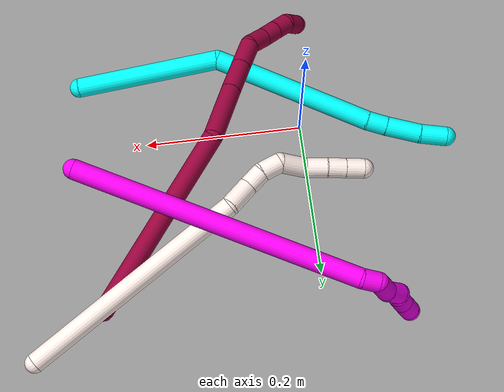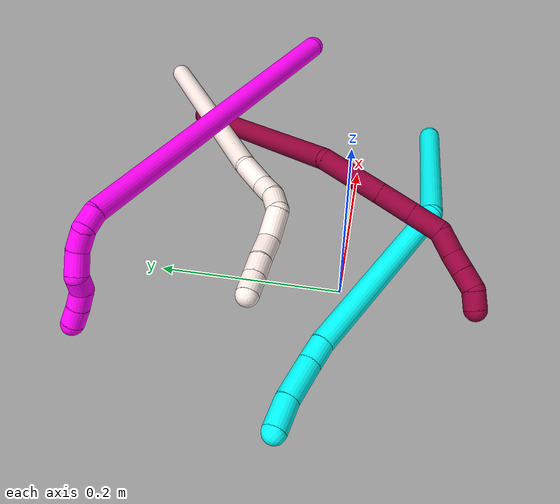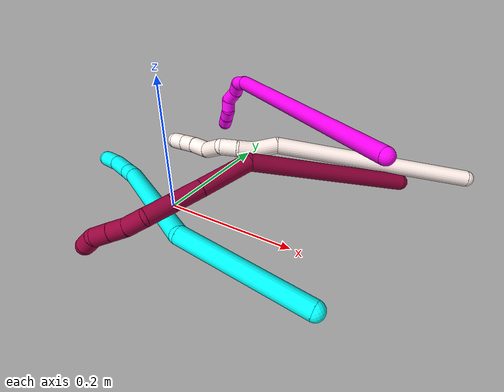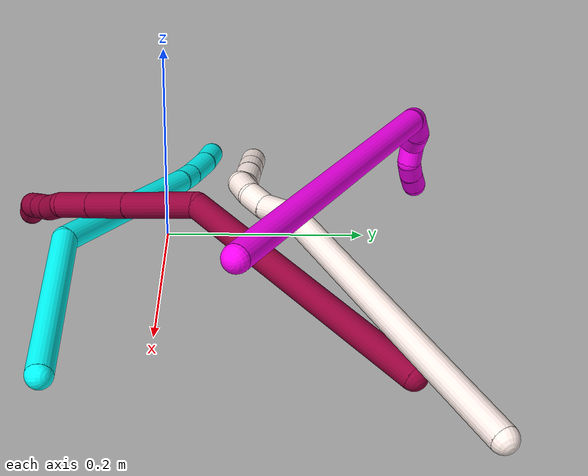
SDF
<sdf version="1.7">
 <world name="default">
  <model name="3">
   <static>0</static>
   <link name="3">
    <collision name="collision-cylinder-e_1_1_4">
     <pose>-0.077036 -0.004174 -0.0517 3.06103 -0.978219 -2.99044</pose>
     <geometry><cylinder><radius>0.0125</radius><length>0.185739</length></cylinder></geometry>
     <surface>
      <friction><ode><mu>1.16</mu><mu2>1.16</mu2><slip1>0</slip1><slip2>0</slip2></ode></friction>
      <contact><ode><kp>1e+06</kp><kd>1</kd><max_vel>0</max_vel><min_depth>0.001</min_depth></ode></contact>
     </surface>
    </collision>
    <visual name="visual-cylinder-e_1_1_4">
     <pose>-0.077036 -0.004174 -0.0517 3.06103 -0.978219 -2.99044</pose>
     <geometry><cylinder><radius>0.0125</radius><length>0.185739</length></cylinder></geometry>
     <material><ambient>0.003922 1 0.996078 1</ambient></material>
    </visual>
    <collision name="collision-cylinder-e_2_4_5">
     <pose>-0.249142 0.031866 -0.122276 -2.00967 -1.13367 1.57273</pose>
     <geometry><cylinder><radius>0.0125</radius><length>0.209874</length></cylinder></geometry>
     <surface>
      <friction><ode><mu>1.16</mu><mu2>1.16</mu2><slip1>0</slip1><slip2>0</slip2></ode></friction>
      <contact><ode><kp>1e+06</kp><kd>1</kd><max_vel>0</max_vel><min_depth>0.001</min_depth></ode></contact>
     </surface>
    </collision>
    <visual name="visual-cylinder-e_2_4_5">
     <pose>-0.249142 0.031866 -0.122276 -2.00967 -1.13367 1.57273</pose>
     <geometry><cylinder><radius>0.0125</radius><length>0.209874</length></cylinder></geometry>
     <material><ambient>0.003922 1 0.996078 1</ambient></material>
    </visual>
    <collision name="collision-cylinder-e_3_5_6">
     <pose>-0.355518 0.076736 -0.14504 -2.26651 -1.07832 1.81443</pose>
     <geometry><cylinder><radius>0.0125</radius><length>0.025661</length></cylinder></geometry>
     <surface>
      <friction><ode><mu>1.16</mu><mu2>1.16</mu2><slip1>0</slip1><slip2>0</slip2></ode></friction>
      <contact><ode><kp>1e+06</kp><kd>1</kd><max_vel>0</max_vel><min_depth>0.001</min_depth></ode></contact>
     </surface>
    </collision>
    <visual name="visual-cylinder-e_3_5_6">
     <pose>-0.355518 0.076736 -0.14504 -2.26651 -1.07832 1.81443</pose>
     <geometry><cylinder><radius>0.0125</radius><length>0.025661</length></cylinder></geometry>
     <material><ambient>0.003922 1 0.996078 1</ambient></material>
    </visual>
    <collision name="collision-cylinder-e_4_6_7">
     <pose>-0.386913 0.088047 -0.156099 -2.39353 -1.11766 2.02054</pose>
     <geometry><cylinder><radius>0.0125</radius><length>0.04469</length></cylinder></geometry>
     <surface>
      <friction><ode><mu>1.16</mu><mu2>1.16</mu2><slip1>0</slip1><slip2>0</slip2></ode></friction>
      <contact><ode><kp>1e+06</kp><kd>1</kd><max_vel>0</max_vel><min_depth>0.001</min_depth></ode></contact>
     </surface>
    </collision>
    <visual name="visual-cylinder-e_4_6_7">
     <pose>-0.386913 0.088047 -0.156099 -2.39353 -1.11766 2.02054</pose>
     <geometry><cylinder><radius>0.0125</radius><length>0.04469</length></cylinder></geometry>
     <material><ambient>0.003922 1 0.996078 1</ambient></material>
    </visual>
    <collision name="collision-cylinder-e_5_7_2">
     <pose>-0.421452 0.099313 -0.170988 -2.60299 -1.01411 2.21932</pose>
     <geometry><cylinder><radius>0.0125</radius><length>0.034035</length></cylinder></geometry>
     <surface>
      <friction><ode><mu>1.16</mu><mu2>1.16</mu2><slip1>0</slip1><slip2>0</slip2></ode></friction>
      <contact><ode><kp>1e+06</kp><kd>1</kd><max_vel>0</max_vel><min_depth>0.001</min_depth></ode></contact>
     </surface>
    </collision>
    <visual name="visual-cylinder-e_5_7_2">
     <pose>-0.421452 0.099313 -0.170988 -2.60299 -1.01411 2.21932</pose>
     <geometry><cylinder><radius>0.0125</radius><length>0.034035</length></cylinder></geometry>
     <material><ambient>0.003922 1 0.996078 1</ambient></material>
    </visual>
    <collision name="collision-sphere-2">
     <pose>-0.4359 0.103925 -0.178707 0 -0 0</pose>
     <geometry><sphere><radius>0.0125</radius></sphere></geometry>
     <surface>
      <friction><ode><mu>1.16</mu><mu2>1.16</mu2><slip1>0</slip1><slip2>0</slip2></ode></friction>
      <contact><ode><kp>1e+06</kp><kd>1</kd><max_vel>0</max_vel><min_depth>0.001</min_depth></ode></contact>
     </surface>
    </collision>
    <visual name="visual-sphere-2">
     <pose>-0.4359 0.103925 -0.178707 0 -0 0</pose>
     <geometry><sphere><radius>0.0125</radius></sphere></geometry>
     <material><ambient>0.003922 1 0.996078 1</ambient></material>
    </visual>
    <collision name="collision-sphere-7">
     <pose>-0.407003 0.094701 -0.163269 0 -0 0</pose>
     <geometry><sphere><radius>0.0125</radius></sphere></geometry>
     <surface>
      <friction><ode><mu>1.16</mu><mu2>1.16</mu2><slip1>0</slip1><slip2>0</slip2></ode></friction>
      <contact><ode><kp>1e+06</kp><kd>1</kd><max_vel>0</max_vel><min_depth>0.001</min_depth></ode></contact>
     </surface>
    </collision>
    <visual name="visual-sphere-7">
     <pose>-0.407003 0.094701 -0.163269 0 -0 0</pose>
     <geometry><sphere><radius>0.0125</radius></sphere></geometry>
     <material><ambient>0.003922 1 0.996078 1</ambient></material>
    </visual>
    <collision name="collision-sphere-6">
     <pose>-0.366824 0.081393 -0.148928 0 -0 0</pose>
     <geometry><sphere><radius>0.0125</radius></sphere></geometry>
     <surface>
      <friction><ode><mu>1.16</mu><mu2>1.16</mu2><slip1>0</slip1><slip2>0</slip2></ode></friction>
      <contact><ode><kp>1e+06</kp><kd>1</kd><max_vel>0</max_vel><min_depth>0.001</min_depth></ode></contact>
     </surface>
    </collision>
    <visual name="visual-sphere-6">
     <pose>-0.366824 0.081393 -0.148928 0 -0 0</pose>
     <geometry><sphere><radius>0.0125</radius></sphere></geometry>
     <material><ambient>0.003922 1 0.996078 1</ambient></material>
    </visual>
    <collision name="collision-sphere-5">
     <pose>-0.344212 0.072079 -0.141152 0 -0 0</pose>
     <geometry><sphere><radius>0.0125</radius></sphere></geometry>
     <surface>
      <friction><ode><mu>1.16</mu><mu2>1.16</mu2><slip1>0</slip1><slip2>0</slip2></ode></friction>
      <contact><ode><kp>1e+06</kp><kd>1</kd><max_vel>0</max_vel><min_depth>0.001</min_depth></ode></contact>
     </surface>
    </collision>
    <visual name="visual-sphere-5">
     <pose>-0.344212 0.072079 -0.141152 0 -0 0</pose>
     <geometry><sphere><radius>0.0125</radius></sphere></geometry>
     <material><ambient>0.003922 1 0.996078 1</ambient></material>
    </visual>
    <collision name="collision-sphere-1">
     <geometry><sphere><radius>0.0125</radius></sphere></geometry>
     <surface>
      <friction><ode><mu>1.16</mu><mu2>1.16</mu2><slip1>0</slip1><slip2>0</slip2></ode></friction>
      <contact><ode><kp>1e+06</kp><kd>1</kd><max_vel>0</max_vel><min_depth>0.001</min_depth></ode></contact>
     </surface>
    </collision>
    <visual name="visual-sphere-1">
     <geometry><sphere><radius>0.0125</radius></sphere></geometry>
     <material><ambient>0.003922 1 0.996078 1</ambient></material>
    </visual>
    <collision name="collision-sphere-4">
     <pose>-0.154071 -0.008348 -0.103399 0 -0 0</pose>
     <geometry><sphere><radius>0.0125</radius></sphere></geometry>
     <surface>
      <friction><ode><mu>1.16</mu><mu2>1.16</mu2><slip1>0</slip1><slip2>0</slip2></ode></friction>
      <contact><ode><kp>1e+06</kp><kd>1</kd><max_vel>0</max_vel><min_depth>0.001</min_depth></ode></contact>
     </surface>
    </collision>
    <visual name="visual-sphere-4">
     <pose>-0.154071 -0.008348 -0.103399 0 -0 0</pose>
     <geometry><sphere><radius>0.0125</radius></sphere></geometry>
     <material><ambient>0.003922 1 0.996078 1</ambient></material>
    </visual>
    <inertial>
     <pose>-0.214711 0.030393 -0.103565 0 -0 0</pose>
     <mass>0.5</mass>
     <inertia>
      <ixx>-4.6e-05</ixx>
      <ixy>0</ixy>
      <ixz>0</ixz>
      <iyy>0.001491</iyy>
      <iyz>0</iyz>
      <izz>0.000876</izz>
     </inertia>
    </inertial>
   </link>
   <pose>0.27967 -0.087795 0.012201 -1.30438 0.32435 -0.572731</pose>
  </model>
  <model name="8">
   <static>0</static>
   <link name="8">
    <collision name="collision-cylinder-e_1_1_4">
     <pose>0.002971 -0.052272 0.116625 0.421357 0.023241 0.00497</pose>
     <geometry><cylinder><radius>0.0125</radius><length>0.255677</length></cylinder></geometry>
     <surface>
      <friction><ode><mu>1.16</mu><mu2>1.16</mu2><slip1>0</slip1><slip2>0</slip2></ode></friction>
      <contact><ode><kp>1e+06</kp><kd>1</kd><max_vel>0</max_vel><min_depth>0.001</min_depth></ode></contact>
     </surface>
    </collision>
    <visual name="visual-cylinder-e_1_1_4">
     <pose>0.002971 -0.052272 0.116625 0.421357 0.023241 0.00497</pose>
     <geometry><cylinder><radius>0.0125</radius><length>0.255677</length></cylinder></geometry>
     <material><ambient>0.584314 0 0.227451 1</ambient></material>
    </visual>
    <collision name="collision-cylinder-e_2_4_5">
     <pose>-0.011587 -0.126811 0.257854 0.735615 -0.485966 -0.19046</pose>
     <geometry><cylinder><radius>0.0125</radius><length>0.075057</length></cylinder></geometry>
     <surface>
      <friction><ode><mu>1.16</mu><mu2>1.16</mu2><slip1>0</slip1><slip2>0</slip2></ode></friction>
      <contact><ode><kp>1e+06</kp><kd>1</kd><max_vel>0</max_vel><min_depth>0.001</min_depth></ode></contact>
     </surface>
    </collision>
    <visual name="visual-cylinder-e_2_4_5">
     <pose>-0.011587 -0.126811 0.257854 0.735615 -0.485966 -0.19046</pose>
     <geometry><cylinder><radius>0.0125</radius><length>0.075057</length></cylinder></geometry>
     <material><ambient>0.584314 0 0.227451 1</ambient></material>
    </visual>
    <collision name="collision-cylinder-e_3_5_6">
     <pose>-0.038622 -0.160978 0.296276 0.710873 -0.480567 -0.181402</pose>
     <geometry><cylinder><radius>0.0125</radius><length>0.041133</length></cylinder></geometry>
     <surface>
      <friction><ode><mu>1.16</mu><mu2>1.16</mu2><slip1>0</slip1><slip2>0</slip2></ode></friction>
      <contact><ode><kp>1e+06</kp><kd>1</kd><max_vel>0</max_vel><min_depth>0.001</min_depth></ode></contact>
     </surface>
    </collision>
    <visual name="visual-cylinder-e_3_5_6">
     <pose>-0.038622 -0.160978 0.296276 0.710873 -0.480567 -0.181402</pose>
     <geometry><cylinder><radius>0.0125</radius><length>0.041133</length></cylinder></geometry>
     <material><ambient>0.584314 0 0.227451 1</ambient></material>
    </visual>
    <collision name="collision-cylinder-e_4_6_7">
     <pose>-0.056392 -0.183259 0.322203 0.708833 -0.477999 -0.17984</pose>
     <geometry><cylinder><radius>0.0125</radius><length>0.035922</length></cylinder></geometry>
     <surface>
      <friction><ode><mu>1.16</mu><mu2>1.16</mu2><slip1>0</slip1><slip2>0</slip2></ode></friction>
      <contact><ode><kp>1e+06</kp><kd>1</kd><max_vel>0</max_vel><min_depth>0.001</min_depth></ode></contact>
     </surface>
    </collision>
    <visual name="visual-cylinder-e_4_6_7">
     <pose>-0.056392 -0.183259 0.322203 0.708833 -0.477999 -0.17984</pose>
     <geometry><cylinder><radius>0.0125</radius><length>0.035922</length></cylinder></geometry>
     <material><ambient>0.584314 0 0.227451 1</ambient></material>
    </visual>
    <collision name="collision-cylinder-e_5_7_8">
     <pose>-0.074258 -0.195129 0.344372 0.146874 -0.756649 -0.058467</pose>
     <geometry><cylinder><radius>0.0125</radius><length>0.02798</length></cylinder></geometry>
     <surface>
      <friction><ode><mu>1.16</mu><mu2>1.16</mu2><slip1>0</slip1><slip2>0</slip2></ode></friction>
      <contact><ode><kp>1e+06</kp><kd>1</kd><max_vel>0</max_vel><min_depth>0.001</min_depth></ode></contact>
     </surface>
    </collision>
    <visual name="visual-cylinder-e_5_7_8">
     <pose>-0.074258 -0.195129 0.344372 0.146874 -0.756649 -0.058467</pose>
     <geometry><cylinder><radius>0.0125</radius><length>0.02798</length></cylinder></geometry>
     <material><ambient>0.584314 0 0.227451 1</ambient></material>
    </visual>
    <collision name="collision-cylinder-e_6_8_9">
     <pose>-0.089775 -0.197821 0.363443 0.132864 -0.576828 -0.039472</pose>
     <geometry><cylinder><radius>0.0125</radius><length>0.021683</length></cylinder></geometry>
     <surface>
      <friction><ode><mu>1.16</mu><mu2>1.16</mu2><slip1>0</slip1><slip2>0</slip2></ode></friction>
      <contact><ode><kp>1e+06</kp><kd>1</kd><max_vel>0</max_vel><min_depth>0.001</min_depth></ode></contact>
     </surface>
    </collision>
    <visual name="visual-cylinder-e_6_8_9">
     <pose>-0.089775 -0.197821 0.363443 0.132864 -0.576828 -0.039472</pose>
     <geometry><cylinder><radius>0.0125</radius><length>0.021683</length></cylinder></geometry>
     <material><ambient>0.584314 0 0.227451 1</ambient></material>
    </visual>
    <collision name="collision-cylinder-e_7_9_10">
     <pose>-0.101806 -0.200154 0.381501 0.124075 -0.590838 -0.037803</pose>
     <geometry><cylinder><radius>0.0125</radius><length>0.021966</length></cylinder></geometry>
     <surface>
      <friction><ode><mu>1.16</mu><mu2>1.16</mu2><slip1>0</slip1><slip2>0</slip2></ode></friction>
      <contact><ode><kp>1e+06</kp><kd>1</kd><max_vel>0</max_vel><min_depth>0.001</min_depth></ode></contact>
     </surface>
    </collision>
    <visual name="visual-cylinder-e_7_9_10">
     <pose>-0.101806 -0.200154 0.381501 0.124075 -0.590838 -0.037803</pose>
     <geometry><cylinder><radius>0.0125</radius><length>0.021966</length></cylinder></geometry>
     <material><ambient>0.584314 0 0.227451 1</ambient></material>
    </visual>
    <collision name="collision-cylinder-e_8_10_2">
     <pose>-0.116619 -0.199201 0.395648 -0.387827 -1.00638 0.215362</pose>
     <geometry><cylinder><radius>0.0125</radius><length>0.020582</length></cylinder></geometry>
     <surface>
      <friction><ode><mu>1.16</mu><mu2>1.16</mu2><slip1>0</slip1><slip2>0</slip2></ode></friction>
      <contact><ode><kp>1e+06</kp><kd>1</kd><max_vel>0</max_vel><min_depth>0.001</min_depth></ode></contact>
     </surface>
    </collision>
    <visual name="visual-cylinder-e_8_10_2">
     <pose>-0.116619 -0.199201 0.395648 -0.387827 -1.00638 0.215362</pose>
     <geometry><cylinder><radius>0.0125</radius><length>0.020582</length></cylinder></geometry>
     <material><ambient>0.584314 0 0.227451 1</ambient></material>
    </visual>
    <collision name="collision-sphere-2">
     <pose>-0.125314 -0.197119 0.400744 0 -0 0</pose>
     <geometry><sphere><radius>0.0125</radius></sphere></geometry>
     <surface>
      <friction><ode><mu>1.16</mu><mu2>1.16</mu2><slip1>0</slip1><slip2>0</slip2></ode></friction>
      <contact><ode><kp>1e+06</kp><kd>1</kd><max_vel>0</max_vel><min_depth>0.001</min_depth></ode></contact>
     </surface>
    </collision>
    <visual name="visual-sphere-2">
     <pose>-0.125314 -0.197119 0.400744 0 -0 0</pose>
     <geometry><sphere><radius>0.0125</radius></sphere></geometry>
     <material><ambient>0.584314 0 0.227451 1</ambient></material>
    </visual>
    <collision name="collision-sphere-10">
     <pose>-0.107924 -0.201283 0.390552 0 -0 0</pose>
     <geometry><sphere><radius>0.0125</radius></sphere></geometry>
     <surface>
      <friction><ode><mu>1.16</mu><mu2>1.16</mu2><slip1>0</slip1><slip2>0</slip2></ode></friction>
      <contact><ode><kp>1e+06</kp><kd>1</kd><max_vel>0</max_vel><min_depth>0.001</min_depth></ode></contact>
     </surface>
    </collision>
    <visual name="visual-sphere-10">
     <pose>-0.107924 -0.201283 0.390552 0 -0 0</pose>
     <geometry><sphere><radius>0.0125</radius></sphere></geometry>
     <material><ambient>0.584314 0 0.227451 1</ambient></material>
    </visual>
    <collision name="collision-sphere-9">
     <pose>-0.095687 -0.199025 0.37245 0 -0 0</pose>
     <geometry><sphere><radius>0.0125</radius></sphere></geometry>
     <surface>
      <friction><ode><mu>1.16</mu><mu2>1.16</mu2><slip1>0</slip1><slip2>0</slip2></ode></friction>
      <contact><ode><kp>1e+06</kp><kd>1</kd><max_vel>0</max_vel><min_depth>0.001</min_depth></ode></contact>
     </surface>
    </collision>
    <visual name="visual-sphere-9">
     <pose>-0.095687 -0.199025 0.37245 0 -0 0</pose>
     <geometry><sphere><radius>0.0125</radius></sphere></geometry>
     <material><ambient>0.584314 0 0.227451 1</ambient></material>
    </visual>
    <collision name="collision-sphere-4">
     <pose>0.005942 -0.104543 0.233251 0 -0 0</pose>
     <geometry><sphere><radius>0.0125</radius></sphere></geometry>
     <surface>
      <friction><ode><mu>1.16</mu><mu2>1.16</mu2><slip1>0</slip1><slip2>0</slip2></ode></friction>
      <contact><ode><kp>1e+06</kp><kd>1</kd><max_vel>0</max_vel><min_depth>0.001</min_depth></ode></contact>
     </surface>
    </collision>
    <visual name="visual-sphere-4">
     <pose>0.005942 -0.104543 0.233251 0 -0 0</pose>
     <geometry><sphere><radius>0.0125</radius></sphere></geometry>
     <material><ambient>0.584314 0 0.227451 1</ambient></material>
    </visual>
    <collision name="collision-sphere-1">
     <geometry><sphere><radius>0.0125</radius></sphere></geometry>
     <surface>
      <friction><ode><mu>1.16</mu><mu2>1.16</mu2><slip1>0</slip1><slip2>0</slip2></ode></friction>
      <contact><ode><kp>1e+06</kp><kd>1</kd><max_vel>0</max_vel><min_depth>0.001</min_depth></ode></contact>
     </surface>
    </collision>
    <visual name="visual-sphere-1">
     <geometry><sphere><radius>0.0125</radius></sphere></geometry>
     <material><ambient>0.584314 0 0.227451 1</ambient></material>
    </visual>
    <collision name="collision-sphere-8">
     <pose>-0.083862 -0.196617 0.354436 0 -0 0</pose>
     <geometry><sphere><radius>0.0125</radius></sphere></geometry>
     <surface>
      <friction><ode><mu>1.16</mu><mu2>1.16</mu2><slip1>0</slip1><slip2>0</slip2></ode></friction>
      <contact><ode><kp>1e+06</kp><kd>1</kd><max_vel>0</max_vel><min_depth>0.001</min_depth></ode></contact>
     </surface>
    </collision>
    <visual name="visual-sphere-8">
     <pose>-0.083862 -0.196617 0.354436 0 -0 0</pose>
     <geometry><sphere><radius>0.0125</radius></sphere></geometry>
     <material><ambient>0.584314 0 0.227451 1</ambient></material>
    </visual>
    <collision name="collision-sphere-5">
     <pose>-0.029115 -0.149078 0.282457 0 -0 0</pose>
     <geometry><sphere><radius>0.0125</radius></sphere></geometry>
     <surface>
      <friction><ode><mu>1.16</mu><mu2>1.16</mu2><slip1>0</slip1><slip2>0</slip2></ode></friction>
      <contact><ode><kp>1e+06</kp><kd>1</kd><max_vel>0</max_vel><min_depth>0.001</min_depth></ode></contact>
     </surface>
    </collision>
    <visual name="visual-sphere-5">
     <pose>-0.029115 -0.149078 0.282457 0 -0 0</pose>
     <geometry><sphere><radius>0.0125</radius></sphere></geometry>
     <material><ambient>0.584314 0 0.227451 1</ambient></material>
    </visual>
    <collision name="collision-sphere-6">
     <pose>-0.04813 -0.172877 0.310096 0 -0 0</pose>
     <geometry><sphere><radius>0.0125</radius></sphere></geometry>
     <surface>
      <friction><ode><mu>1.16</mu><mu2>1.16</mu2><slip1>0</slip1><slip2>0</slip2></ode></friction>
      <contact><ode><kp>1e+06</kp><kd>1</kd><max_vel>0</max_vel><min_depth>0.001</min_depth></ode></contact>
     </surface>
    </collision>
    <visual name="visual-sphere-6">
     <pose>-0.04813 -0.172877 0.310096 0 -0 0</pose>
     <geometry><sphere><radius>0.0125</radius></sphere></geometry>
     <material><ambient>0.584314 0 0.227451 1</ambient></material>
    </visual>
    <collision name="collision-sphere-7">
     <pose>-0.064654 -0.19364 0.334309 0 -0 0</pose>
     <geometry><sphere><radius>0.0125</radius></sphere></geometry>
     <surface>
      <friction><ode><mu>1.16</mu><mu2>1.16</mu2><slip1>0</slip1><slip2>0</slip2></ode></friction>
      <contact><ode><kp>1e+06</kp><kd>1</kd><max_vel>0</max_vel><min_depth>0.001</min_depth></ode></contact>
     </surface>
    </collision>
    <visual name="visual-sphere-7">
     <pose>-0.064654 -0.19364 0.334309 0 -0 0</pose>
     <geometry><sphere><radius>0.0125</radius></sphere></geometry>
     <material><ambient>0.584314 0 0.227451 1</ambient></material>
    </visual>
    <inertial>
     <pose>-0.024771 -0.108666 0.213945 0 -0 0</pose>
     <mass>0.5</mass>
     <inertia>
      <ixx>0.001441</ixx>
      <ixy>0</ixy>
      <ixz>0</ixz>
      <iyy>0.001311</iyy>
      <iyz>0</iyz>
      <izz>0.000632</izz>
     </inertia>
    </inertial>
   </link>
   <pose>0.275398 0.21972 0.011486 -0.475144 -1.28407 0.913359</pose>
  </model>
  <model name="10">
   <static>0</static>
   <link name="10">
    <collision name="collision-cylinder-e_1_1_4">
     <pose>-0.009194 0.017445 -0.183104 -3.04661 -0.049946 0.967723</pose>
     <geometry><cylinder><radius>0.0125</radius><length>0.368326</length></cylinder></geometry>
     <surface>
      <friction><ode><mu>1.16</mu><mu2>1.16</mu2><slip1>0</slip1><slip2>0</slip2></ode></friction>
      <contact><ode><kp>1e+06</kp><kd>1</kd><max_vel>0</max_vel><min_depth>0.001</min_depth></ode></contact>
     </surface>
    </collision>
    <visual name="visual-cylinder-e_1_1_4">
     <pose>-0.009194 0.017445 -0.183104 -3.04661 -0.049946 0.967723</pose>
     <geometry><cylinder><radius>0.0125</radius><length>0.368326</length></cylinder></geometry>
     <material><ambient>1 0 0.964706 1</ambient></material>
    </visual>
    <collision name="collision-cylinder-e_2_4_5">
     <pose>-0.015982 0.037611 -0.376317 -2.87862 0.225928 -1.41803</pose>
     <geometry><cylinder><radius>0.0125</radius><length>0.021483</length></cylinder></geometry>
     <surface>
      <friction><ode><mu>1.16</mu><mu2>1.16</mu2><slip1>0</slip1><slip2>0</slip2></ode></friction>
      <contact><ode><kp>1e+06</kp><kd>1</kd><max_vel>0</max_vel><min_depth>0.001</min_depth></ode></contact>
     </surface>
    </collision>
    <visual name="visual-cylinder-e_2_4_5">
     <pose>-0.015982 0.037611 -0.376317 -2.87862 0.225928 -1.41803</pose>
     <geometry><cylinder><radius>0.0125</radius><length>0.021483</length></cylinder></geometry>
     <material><ambient>1 0 0.964706 1</ambient></material>
    </visual>
    <collision name="collision-cylinder-e_3_5_6">
     <pose>-0.011439 0.050522 -0.39215 -2.0827 0.180895 -0.307528</pose>
     <geometry><cylinder><radius>0.0125</radius><length>0.023762</length></cylinder></geometry>
     <surface>
      <friction><ode><mu>1.16</mu><mu2>1.16</mu2><slip1>0</slip1><slip2>0</slip2></ode></friction>
      <contact><ode><kp>1e+06</kp><kd>1</kd><max_vel>0</max_vel><min_depth>0.001</min_depth></ode></contact>
     </surface>
    </collision>
    <visual name="visual-cylinder-e_3_5_6">
     <pose>-0.011439 0.050522 -0.39215 -2.0827 0.180895 -0.307528</pose>
     <geometry><cylinder><radius>0.0125</radius><length>0.023762</length></cylinder></geometry>
     <material><ambient>1 0 0.964706 1</ambient></material>
    </visual>
    <collision name="collision-cylinder-e_4_6_7">
     <pose>-0.00247 0.069302 -0.404854 -2.25302 0.552919 -1.07499</pose>
     <geometry><cylinder><radius>0.0125</radius><length>0.026014</length></cylinder></geometry>
     <surface>
      <friction><ode><mu>1.16</mu><mu2>1.16</mu2><slip1>0</slip1><slip2>0</slip2></ode></friction>
      <contact><ode><kp>1e+06</kp><kd>1</kd><max_vel>0</max_vel><min_depth>0.001</min_depth></ode></contact>
     </surface>
    </collision>
    <visual name="visual-cylinder-e_4_6_7">
     <pose>-0.00247 0.069302 -0.404854 -2.25302 0.552919 -1.07499</pose>
     <geometry><cylinder><radius>0.0125</radius><length>0.026014</length></cylinder></geometry>
     <material><ambient>1 0 0.964706 1</ambient></material>
    </visual>
    <collision name="collision-cylinder-e_5_7_8">
     <pose>0.008085 0.087297 -0.411075 -1.49034 0.376038 -0.347545</pose>
     <geometry><cylinder><radius>0.0125</radius><length>0.020285</length></cylinder></geometry>
     <surface>
      <friction><ode><mu>1.16</mu><mu2>1.16</mu2><slip1>0</slip1><slip2>0</slip2></ode></friction>
      <contact><ode><kp>1e+06</kp><kd>1</kd><max_vel>0</max_vel><min_depth>0.001</min_depth></ode></contact>
     </surface>
    </collision>
    <visual name="visual-cylinder-e_5_7_8">
     <pose>0.008085 0.087297 -0.411075 -1.49034 0.376038 -0.347545</pose>
     <geometry><cylinder><radius>0.0125</radius><length>0.020285</length></cylinder></geometry>
     <material><ambient>1 0 0.964706 1</ambient></material>
    </visual>
    <collision name="collision-cylinder-e_6_8_9">
     <pose>0.014061 0.105533 -0.414561 -2.0187 0.225826 -0.356747</pose>
     <geometry><cylinder><radius>0.0125</radius><length>0.02011</length></cylinder></geometry>
     <surface>
      <friction><ode><mu>1.16</mu><mu2>1.16</mu2><slip1>0</slip1><slip2>0</slip2></ode></friction>
      <contact><ode><kp>1e+06</kp><kd>1</kd><max_vel>0</max_vel><min_depth>0.001</min_depth></ode></contact>
     </surface>
    </collision>
    <visual name="visual-cylinder-e_6_8_9">
     <pose>0.014061 0.105533 -0.414561 -2.0187 0.225826 -0.356747</pose>
     <geometry><cylinder><radius>0.0125</radius><length>0.02011</length></cylinder></geometry>
     <material><ambient>1 0 0.964706 1</ambient></material>
    </visual>
    <collision name="collision-cylinder-e_7_9_2">
     <pose>0.018005 0.122858 -0.423827 -2.10481 0.169882 -0.296345</pose>
     <geometry><cylinder><radius>0.0125</radius><length>0.02002</length></cylinder></geometry>
     <surface>
      <friction><ode><mu>1.16</mu><mu2>1.16</mu2><slip1>0</slip1><slip2>0</slip2></ode></friction>
      <contact><ode><kp>1e+06</kp><kd>1</kd><max_vel>0</max_vel><min_depth>0.001</min_depth></ode></contact>
     </surface>
    </collision>
    <visual name="visual-cylinder-e_7_9_2">
     <pose>0.018005 0.122858 -0.423827 -2.10481 0.169882 -0.296345</pose>
     <geometry><cylinder><radius>0.0125</radius><length>0.02002</length></cylinder></geometry>
     <material><ambient>1 0 0.964706 1</ambient></material>
    </visual>
    <collision name="collision-sphere-2">
     <pose>0.019698 0.131351 -0.428849 0 -0 0</pose>
     <geometry><sphere><radius>0.0125</radius></sphere></geometry>
     <surface>
      <friction><ode><mu>1.16</mu><mu2>1.16</mu2><slip1>0</slip1><slip2>0</slip2></ode></friction>
      <contact><ode><kp>1e+06</kp><kd>1</kd><max_vel>0</max_vel><min_depth>0.001</min_depth></ode></contact>
     </surface>
    </collision>
    <visual name="visual-sphere-2">
     <pose>0.019698 0.131351 -0.428849 0 -0 0</pose>
     <geometry><sphere><radius>0.0125</radius></sphere></geometry>
     <material><ambient>1 0 0.964706 1</ambient></material>
    </visual>
    <collision name="collision-sphere-9">
     <pose>0.016313 0.114366 -0.418805 0 -0 0</pose>
     <geometry><sphere><radius>0.0125</radius></sphere></geometry>
     <surface>
      <friction><ode><mu>1.16</mu><mu2>1.16</mu2><slip1>0</slip1><slip2>0</slip2></ode></friction>
      <contact><ode><kp>1e+06</kp><kd>1</kd><max_vel>0</max_vel><min_depth>0.001</min_depth></ode></contact>
     </surface>
    </collision>
    <visual name="visual-sphere-9">
     <pose>0.016313 0.114366 -0.418805 0 -0 0</pose>
     <geometry><sphere><radius>0.0125</radius></sphere></geometry>
     <material><ambient>1 0 0.964706 1</ambient></material>
    </visual>
    <collision name="collision-sphere-4">
     <pose>-0.018389 0.03489 -0.366209 0 -0 0</pose>
     <geometry><sphere><radius>0.0125</radius></sphere></geometry>
     <surface>
      <friction><ode><mu>1.16</mu><mu2>1.16</mu2><slip1>0</slip1><slip2>0</slip2></ode></friction>
      <contact><ode><kp>1e+06</kp><kd>1</kd><max_vel>0</max_vel><min_depth>0.001</min_depth></ode></contact>
     </surface>
    </collision>
    <visual name="visual-sphere-4">
     <pose>-0.018389 0.03489 -0.366209 0 -0 0</pose>
     <geometry><sphere><radius>0.0125</radius></sphere></geometry>
     <material><ambient>1 0 0.964706 1</ambient></material>
    </visual>
    <collision name="collision-sphere-1">
     <geometry><sphere><radius>0.0125</radius></sphere></geometry>
     <surface>
      <friction><ode><mu>1.16</mu><mu2>1.16</mu2><slip1>0</slip1><slip2>0</slip2></ode></friction>
      <contact><ode><kp>1e+06</kp><kd>1</kd><max_vel>0</max_vel><min_depth>0.001</min_depth></ode></contact>
     </surface>
    </collision>
    <visual name="visual-sphere-1">
     <geometry><sphere><radius>0.0125</radius></sphere></geometry>
     <material><ambient>1 0 0.964706 1</ambient></material>
    </visual>
    <collision name="collision-sphere-8">
     <pose>0.01181 0.0967 -0.410317 0 -0 0</pose>
     <geometry><sphere><radius>0.0125</radius></sphere></geometry>
     <surface>
      <friction><ode><mu>1.16</mu><mu2>1.16</mu2><slip1>0</slip1><slip2>0</slip2></ode></friction>
      <contact><ode><kp>1e+06</kp><kd>1</kd><max_vel>0</max_vel><min_depth>0.001</min_depth></ode></contact>
     </surface>
    </collision>
    <visual name="visual-sphere-8">
     <pose>0.01181 0.0967 -0.410317 0 -0 0</pose>
     <geometry><sphere><radius>0.0125</radius></sphere></geometry>
     <material><ambient>1 0 0.964706 1</ambient></material>
    </visual>
    <collision name="collision-sphere-5">
     <pose>-0.013576 0.040333 -0.386426 0 -0 0</pose>
     <geometry><sphere><radius>0.0125</radius></sphere></geometry>
     <surface>
      <friction><ode><mu>1.16</mu><mu2>1.16</mu2><slip1>0</slip1><slip2>0</slip2></ode></friction>
      <contact><ode><kp>1e+06</kp><kd>1</kd><max_vel>0</max_vel><min_depth>0.001</min_depth></ode></contact>
     </surface>
    </collision>
    <visual name="visual-sphere-5">
     <pose>-0.013576 0.040333 -0.386426 0 -0 0</pose>
     <geometry><sphere><radius>0.0125</radius></sphere></geometry>
     <material><ambient>1 0 0.964706 1</ambient></material>
    </visual>
    <collision name="collision-sphere-6">
     <pose>-0.009301 0.060711 -0.397875 0 -0 0</pose>
     <geometry><sphere><radius>0.0125</radius></sphere></geometry>
     <surface>
      <friction><ode><mu>1.16</mu><mu2>1.16</mu2><slip1>0</slip1><slip2>0</slip2></ode></friction>
      <contact><ode><kp>1e+06</kp><kd>1</kd><max_vel>0</max_vel><min_depth>0.001</min_depth></ode></contact>
     </surface>
    </collision>
    <visual name="visual-sphere-6">
     <pose>-0.009301 0.060711 -0.397875 0 -0 0</pose>
     <geometry><sphere><radius>0.0125</radius></sphere></geometry>
     <material><ambient>1 0 0.964706 1</ambient></material>
    </visual>
    <collision name="collision-sphere-7">
     <pose>0.004361 0.077894 -0.411833 0 -0 0</pose>
     <geometry><sphere><radius>0.0125</radius></sphere></geometry>
     <surface>
      <friction><ode><mu>1.16</mu><mu2>1.16</mu2><slip1>0</slip1><slip2>0</slip2></ode></friction>
      <contact><ode><kp>1e+06</kp><kd>1</kd><max_vel>0</max_vel><min_depth>0.001</min_depth></ode></contact>
     </surface>
    </collision>
    <visual name="visual-sphere-7">
     <pose>0.004361 0.077894 -0.411833 0 -0 0</pose>
     <geometry><sphere><radius>0.0125</radius></sphere></geometry>
     <material><ambient>1 0 0.964706 1</ambient></material>
    </visual>
    <inertial>
     <pose>-0.006517 0.033179 -0.241074 0 -0 0</pose>
     <mass>0.5</mass>
     <inertia>
      <ixx>0.005807</ixx>
      <ixy>0</ixy>
      <ixz>0</ixz>
      <iyy>0.001097</iyy>
      <iyz>0</iyz>
      <izz>-0.000232</izz>
     </inertia>
    </inertial>
   </link>
   <pose>0.288984 0.074109 0.127228 -1.61186 0.272752 -2.00173</pose>
  </model>
  <model name="11">
   <static>0</static>
   <link name="11">
    <collision name="collision-cylinder-e_1_1_4">
     <pose>-0.024162 0.003946 -0.150335 -3.11535 -0.159305 2.81572</pose>
     <geometry><cylinder><radius>0.0125</radius><length>0.304631</length></cylinder></geometry>
     <surface>
      <friction><ode><mu>1.16</mu><mu2>1.16</mu2><slip1>0</slip1><slip2>0</slip2></ode></friction>
      <contact><ode><kp>1e+06</kp><kd>1</kd><max_vel>0</max_vel><min_depth>0.001</min_depth></ode></contact>
     </surface>
    </collision>
    <visual name="visual-cylinder-e_1_1_4">
     <pose>-0.024162 0.003946 -0.150335 -3.11535 -0.159305 2.81572</pose>
     <geometry><cylinder><radius>0.0125</radius><length>0.304631</length></cylinder></geometry>
     <material><ambient>1 0.933333 0.909804 1</ambient></material>
    </visual>
    <collision name="collision-cylinder-e_2_4_5">
     <pose>-0.057604 0.00888 -0.316272 -3.07833 -0.535706 2.91204</pose>
     <geometry><cylinder><radius>0.0125</radius><length>0.036359</length></cylinder></geometry>
     <surface>
      <friction><ode><mu>1.16</mu><mu2>1.16</mu2><slip1>0</slip1><slip2>0</slip2></ode></friction>
      <contact><ode><kp>1e+06</kp><kd>1</kd><max_vel>0</max_vel><min_depth>0.001</min_depth></ode></contact>
     </surface>
    </collision>
    <visual name="visual-cylinder-e_2_4_5">
     <pose>-0.057604 0.00888 -0.316272 -3.07833 -0.535706 2.91204</pose>
     <geometry><cylinder><radius>0.0125</radius><length>0.036359</length></cylinder></geometry>
     <material><ambient>1 0.933333 0.909804 1</ambient></material>
    </visual>
    <collision name="collision-cylinder-e_3_5_6">
     <pose>-0.069881 0.011374 -0.343424 -3.01198 -0.251832 2.19414</pose>
     <geometry><cylinder><radius>0.0125</radius><length>0.024056</length></cylinder></geometry>
     <surface>
      <friction><ode><mu>1.16</mu><mu2>1.16</mu2><slip1>0</slip1><slip2>0</slip2></ode></friction>
      <contact><ode><kp>1e+06</kp><kd>1</kd><max_vel>0</max_vel><min_depth>0.001</min_depth></ode></contact>
     </surface>
    </collision>
    <visual name="visual-cylinder-e_3_5_6">
     <pose>-0.069881 0.011374 -0.343424 -3.01198 -0.251832 2.19414</pose>
     <geometry><cylinder><radius>0.0125</radius><length>0.024056</length></cylinder></geometry>
     <material><ambient>1 0.933333 0.909804 1</ambient></material>
    </visual>
    <collision name="collision-cylinder-e_4_6_7">
     <pose>-0.075416 0.010396 -0.367429 2.94474 -0.197285 -1.57298</pose>
     <geometry><cylinder><radius>0.0125</radius><length>0.025901</length></cylinder></geometry>
     <surface>
      <friction><ode><mu>1.16</mu><mu2>1.16</mu2><slip1>0</slip1><slip2>0</slip2></ode></friction>
      <contact><ode><kp>1e+06</kp><kd>1</kd><max_vel>0</max_vel><min_depth>0.001</min_depth></ode></contact>
     </surface>
    </collision>
    <visual name="visual-cylinder-e_4_6_7">
     <pose>-0.075416 0.010396 -0.367429 2.94474 -0.197285 -1.57298</pose>
     <geometry><cylinder><radius>0.0125</radius><length>0.025901</length></cylinder></geometry>
     <material><ambient>1 0.933333 0.909804 1</ambient></material>
    </visual>
    <collision name="collision-cylinder-e_5_7_8">
     <pose>-0.082295 -0.005426 -0.390281 2.23297 -0.25124 -0.506068</pose>
     <geometry><cylinder><radius>0.0125</radius><length>0.034921</length></cylinder></geometry>
     <surface>
      <friction><ode><mu>1.16</mu><mu2>1.16</mu2><slip1>0</slip1><slip2>0</slip2></ode></friction>
      <contact><ode><kp>1e+06</kp><kd>1</kd><max_vel>0</max_vel><min_depth>0.001</min_depth></ode></contact>
     </surface>
    </collision>
    <visual name="visual-cylinder-e_5_7_8">
     <pose>-0.082295 -0.005426 -0.390281 2.23297 -0.25124 -0.506068</pose>
     <geometry><cylinder><radius>0.0125</radius><length>0.034921</length></cylinder></geometry>
     <material><ambient>1 0.933333 0.909804 1</ambient></material>
    </visual>
    <collision name="collision-cylinder-e_6_8_9">
     <pose>-0.08544 -0.026773 -0.412208 2.53444 0.085023 0.269925</pose>
     <geometry><cylinder><radius>0.0125</radius><length>0.028175</length></cylinder></geometry>
     <surface>
      <friction><ode><mu>1.16</mu><mu2>1.16</mu2><slip1>0</slip1><slip2>0</slip2></ode></friction>
      <contact><ode><kp>1e+06</kp><kd>1</kd><max_vel>0</max_vel><min_depth>0.001</min_depth></ode></contact>
     </surface>
    </collision>
    <visual name="visual-cylinder-e_6_8_9">
     <pose>-0.08544 -0.026773 -0.412208 2.53444 0.085023 0.269925</pose>
     <geometry><cylinder><radius>0.0125</radius><length>0.028175</length></cylinder></geometry>
     <material><ambient>1 0.933333 0.909804 1</ambient></material>
    </visual>
    <collision name="collision-cylinder-e_7_9_10">
     <pose>-0.084328 -0.041801 -0.432762 2.4806 -0.007335 -0.021379</pose>
     <geometry><cylinder><radius>0.0125</radius><length>0.022871</length></cylinder></geometry>
     <surface>
      <friction><ode><mu>1.16</mu><mu2>1.16</mu2><slip1>0</slip1><slip2>0</slip2></ode></friction>
      <contact><ode><kp>1e+06</kp><kd>1</kd><max_vel>0</max_vel><min_depth>0.001</min_depth></ode></contact>
     </surface>
    </collision>
    <visual name="visual-cylinder-e_7_9_10">
     <pose>-0.084328 -0.041801 -0.432762 2.4806 -0.007335 -0.021379</pose>
     <geometry><cylinder><radius>0.0125</radius><length>0.022871</length></cylinder></geometry>
     <material><ambient>1 0.933333 0.909804 1</ambient></material>
    </visual>
    <collision name="collision-cylinder-e_8_10_2">
     <pose>-0.084494 -0.055906 -0.450901 2.48071 -0.007138 -0.02081</pose>
     <geometry><cylinder><radius>0.0125</radius><length>0.023085</length></cylinder></geometry>
     <surface>
      <friction><ode><mu>1.16</mu><mu2>1.16</mu2><slip1>0</slip1><slip2>0</slip2></ode></friction>
      <contact><ode><kp>1e+06</kp><kd>1</kd><max_vel>0</max_vel><min_depth>0.001</min_depth></ode></contact>
     </surface>
    </collision>
    <visual name="visual-cylinder-e_8_10_2">
     <pose>-0.084494 -0.055906 -0.450901 2.48071 -0.007138 -0.02081</pose>
     <geometry><cylinder><radius>0.0125</radius><length>0.023085</length></cylinder></geometry>
     <material><ambient>1 0.933333 0.909804 1</ambient></material>
    </visual>
    <collision name="collision-sphere-2">
     <pose>-0.084576 -0.062991 -0.460013 0 -0 0</pose>
     <geometry><sphere><radius>0.0125</radius></sphere></geometry>
     <surface>
      <friction><ode><mu>1.16</mu><mu2>1.16</mu2><slip1>0</slip1><slip2>0</slip2></ode></friction>
      <contact><ode><kp>1e+06</kp><kd>1</kd><max_vel>0</max_vel><min_depth>0.001</min_depth></ode></contact>
     </surface>
    </collision>
    <visual name="visual-sphere-2">
     <pose>-0.084576 -0.062991 -0.460013 0 -0 0</pose>
     <geometry><sphere><radius>0.0125</radius></sphere></geometry>
     <material><ambient>1 0.933333 0.909804 1</ambient></material>
    </visual>
    <collision name="collision-sphere-10">
     <pose>-0.084411 -0.048821 -0.441789 0 -0 0</pose>
     <geometry><sphere><radius>0.0125</radius></sphere></geometry>
     <surface>
      <friction><ode><mu>1.16</mu><mu2>1.16</mu2><slip1>0</slip1><slip2>0</slip2></ode></friction>
      <contact><ode><kp>1e+06</kp><kd>1</kd><max_vel>0</max_vel><min_depth>0.001</min_depth></ode></contact>
     </surface>
    </collision>
    <visual name="visual-sphere-10">
     <pose>-0.084411 -0.048821 -0.441789 0 -0 0</pose>
     <geometry><sphere><radius>0.0125</radius></sphere></geometry>
     <material><ambient>1 0.933333 0.909804 1</ambient></material>
    </visual>
    <collision name="collision-sphere-9">
     <pose>-0.084244 -0.034781 -0.423735 0 -0 0</pose>
     <geometry><sphere><radius>0.0125</radius></sphere></geometry>
     <surface>
      <friction><ode><mu>1.16</mu><mu2>1.16</mu2><slip1>0</slip1><slip2>0</slip2></ode></friction>
      <contact><ode><kp>1e+06</kp><kd>1</kd><max_vel>0</max_vel><min_depth>0.001</min_depth></ode></contact>
     </surface>
    </collision>
    <visual name="visual-sphere-9">
     <pose>-0.084244 -0.034781 -0.423735 0 -0 0</pose>
     <geometry><sphere><radius>0.0125</radius></sphere></geometry>
     <material><ambient>1 0.933333 0.909804 1</ambient></material>
    </visual>
    <collision name="collision-sphere-4">
     <pose>-0.048324 0.007892 -0.30067 0 -0 0</pose>
     <geometry><sphere><radius>0.0125</radius></sphere></geometry>
     <surface>
      <friction><ode><mu>1.16</mu><mu2>1.16</mu2><slip1>0</slip1><slip2>0</slip2></ode></friction>
      <contact><ode><kp>1e+06</kp><kd>1</kd><max_vel>0</max_vel><min_depth>0.001</min_depth></ode></contact>
     </surface>
    </collision>
    <visual name="visual-sphere-4">
     <pose>-0.048324 0.007892 -0.30067 0 -0 0</pose>
     <geometry><sphere><radius>0.0125</radius></sphere></geometry>
     <material><ambient>1 0.933333 0.909804 1</ambient></material>
    </visual>
    <collision name="collision-sphere-1">
     <geometry><sphere><radius>0.0125</radius></sphere></geometry>
     <surface>
      <friction><ode><mu>1.16</mu><mu2>1.16</mu2><slip1>0</slip1><slip2>0</slip2></ode></friction>
      <contact><ode><kp>1e+06</kp><kd>1</kd><max_vel>0</max_vel><min_depth>0.001</min_depth></ode></contact>
     </surface>
    </collision>
    <visual name="visual-sphere-1">
     <geometry><sphere><radius>0.0125</radius></sphere></geometry>
     <material><ambient>1 0.933333 0.909804 1</ambient></material>
    </visual>
    <collision name="collision-sphere-8">
     <pose>-0.086636 -0.018764 -0.40068 0 -0 0</pose>
     <geometry><sphere><radius>0.0125</radius></sphere></geometry>
     <surface>
      <friction><ode><mu>1.16</mu><mu2>1.16</mu2><slip1>0</slip1><slip2>0</slip2></ode></friction>
      <contact><ode><kp>1e+06</kp><kd>1</kd><max_vel>0</max_vel><min_depth>0.001</min_depth></ode></contact>
     </surface>
    </collision>
    <visual name="visual-sphere-8">
     <pose>-0.086636 -0.018764 -0.40068 0 -0 0</pose>
     <geometry><sphere><radius>0.0125</radius></sphere></geometry>
     <material><ambient>1 0.933333 0.909804 1</ambient></material>
    </visual>
    <collision name="collision-sphere-5">
     <pose>-0.066884 0.009869 -0.331873 0 -0 0</pose>
     <geometry><sphere><radius>0.0125</radius></sphere></geometry>
     <surface>
      <friction><ode><mu>1.16</mu><mu2>1.16</mu2><slip1>0</slip1><slip2>0</slip2></ode></friction>
      <contact><ode><kp>1e+06</kp><kd>1</kd><max_vel>0</max_vel><min_depth>0.001</min_depth></ode></contact>
     </surface>
    </collision>
    <visual name="visual-sphere-5">
     <pose>-0.066884 0.009869 -0.331873 0 -0 0</pose>
     <geometry><sphere><radius>0.0125</radius></sphere></geometry>
     <material><ambient>1 0.933333 0.909804 1</ambient></material>
    </visual>
    <collision name="collision-sphere-6">
     <pose>-0.072878 0.01288 -0.354975 0 -0 0</pose>
     <geometry><sphere><radius>0.0125</radius></sphere></geometry>
     <surface>
      <friction><ode><mu>1.16</mu><mu2>1.16</mu2><slip1>0</slip1><slip2>0</slip2></ode></friction>
      <contact><ode><kp>1e+06</kp><kd>1</kd><max_vel>0</max_vel><min_depth>0.001</min_depth></ode></contact>
     </surface>
    </collision>
    <visual name="visual-sphere-6">
     <pose>-0.072878 0.01288 -0.354975 0 -0 0</pose>
     <geometry><sphere><radius>0.0125</radius></sphere></geometry>
     <material><ambient>1 0.933333 0.909804 1</ambient></material>
    </visual>
    <collision name="collision-sphere-7">
     <pose>-0.077955 0.007912 -0.379883 0 -0 0</pose>
     <geometry><sphere><radius>0.0125</radius></sphere></geometry>
     <surface>
      <friction><ode><mu>1.16</mu><mu2>1.16</mu2><slip1>0</slip1><slip2>0</slip2></ode></friction>
      <contact><ode><kp>1e+06</kp><kd>1</kd><max_vel>0</max_vel><min_depth>0.001</min_depth></ode></contact>
     </surface>
    </collision>
    <visual name="visual-sphere-7">
     <pose>-0.077955 0.007912 -0.379883 0 -0 0</pose>
     <geometry><sphere><radius>0.0125</radius></sphere></geometry>
     <material><ambient>1 0.933333 0.909804 1</ambient></material>
    </visual>
    <inertial>
     <pose>-0.044499 -0.002245 -0.241249 0 -0 0</pose>
     <mass>0.5</mass>
     <inertia>
      <ixx>-0.001469</ixx>
      <ixy>0</ixy>
      <ixz>0</ixz>
      <iyy>0.002987</iyy>
      <iyz>0</iyz>
      <izz>0.000291</izz>
     </inertia>
    </inertial>
   </link>
   <pose>0.364273 0.275957 0.015916 2.06973 -0.883131 1.58679</pose>
  </model>
 </world>
</sdf>
